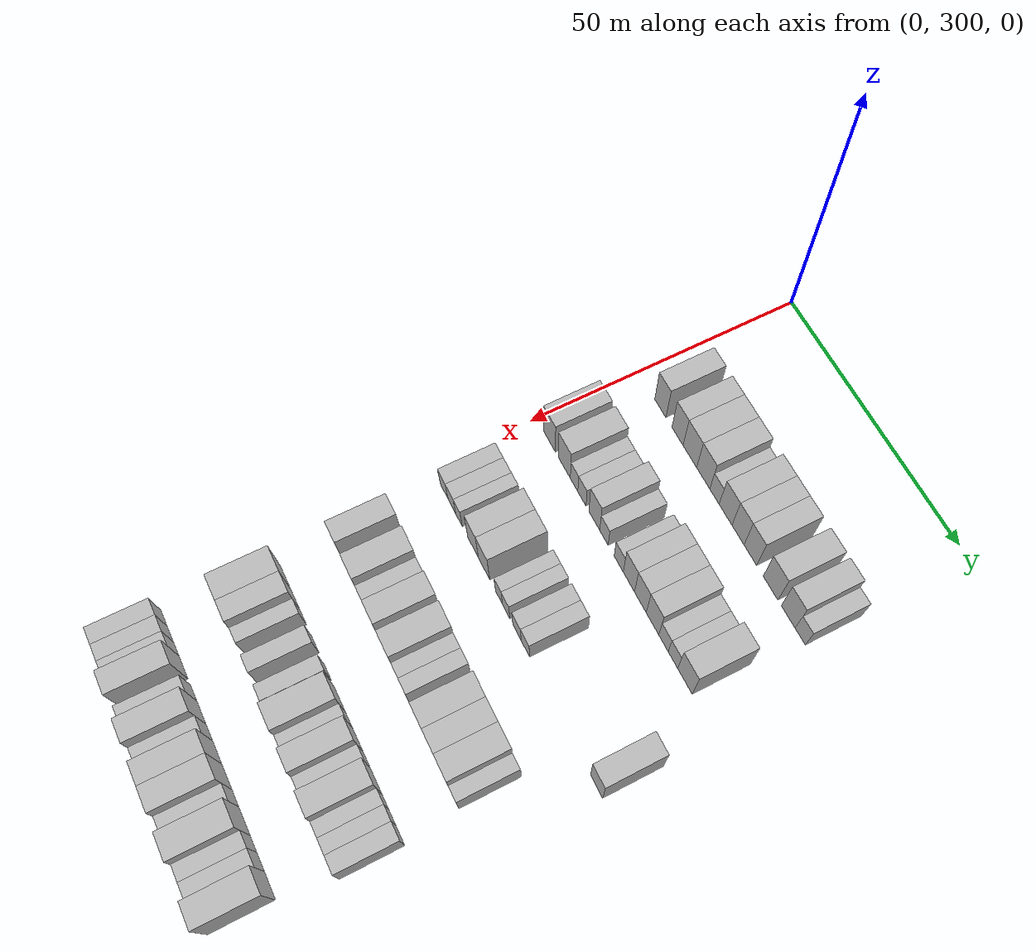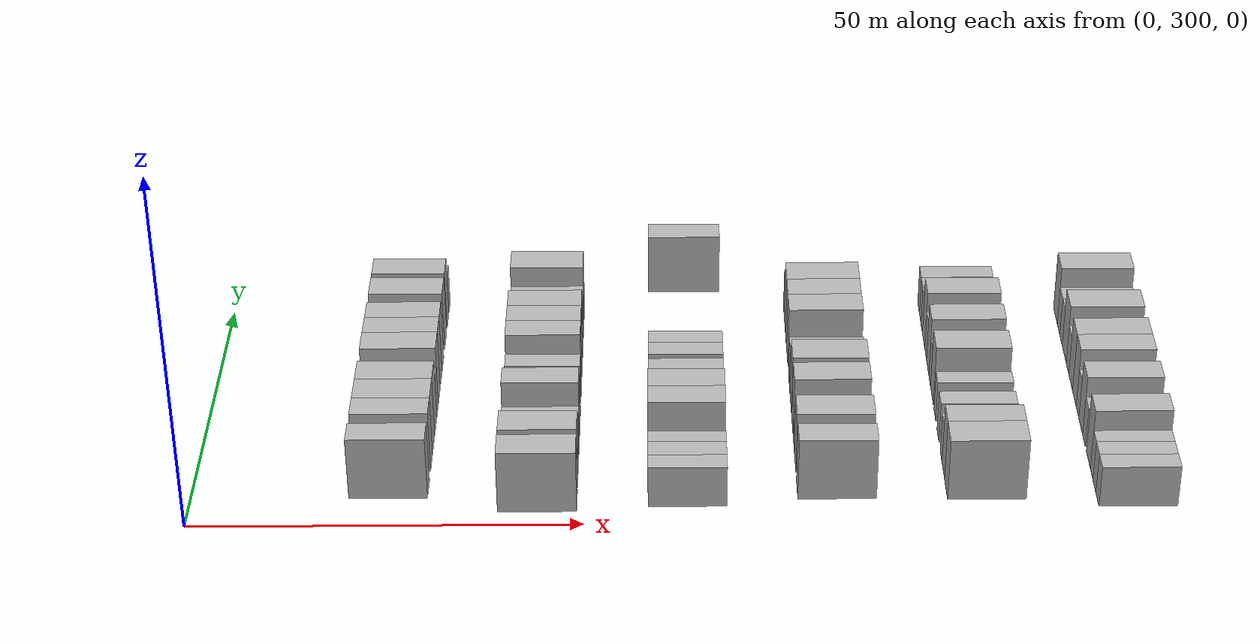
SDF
<sdf version="1.6">
 <world name="default">
  <model name="building_158">
   <static>1</static>
   <pose>25.0000 307.6131 0 0.000000 0.000000 0.000000</pose>
   <link name="link">
    <pose>0 0 4.50 0 0 0</pose>
    <collision name="collision"><geometry><box><size>10.0000 3.7844 9.0000</size></box></geometry></collision>
    <visual name="visual">
     <cast_shadows>0</cast_shadows>
     <geometry><box><size>10.0000 3.7844 9.0000</size></box></geometry>
     <material>
      <script>
       <uri>model://HANNAS_wall/materials/scripts</uri>
       <uri>model://HANNAS_wall/materials/textures</uri>
       <name>vrc/HANNAS_wall</name>
      </script>
     </material>
    </visual>
   </link>
  </model>
  <model name="building_159">
   <static>1</static>
   <pose>25.0000 313.3471 0 0.000000 0.000000 0.000000</pose>
   <link name="link">
    <pose>0 0 4.50 0 0 0</pose>
    <collision name="collision"><geometry><box><size>10.0000 3.6837 9.0000</size></box></geometry></collision>
    <visual name="visual">
     <cast_shadows>0</cast_shadows>
     <geometry><box><size>10.0000 3.6837 9.0000</size></box></geometry>
     <material>
      <script>
       <uri>model://HANNAS_wall/materials/scripts</uri>
       <uri>model://HANNAS_wall/materials/textures</uri>
       <name>vrc/HANNAS_wall</name>
      </script>
     </material>
    </visual>
   </link>
  </model>
  <model name="building_160">
   <static>1</static>
   <pose>25.0000 317.4064 0 0.000000 0.000000 0.000000</pose>
   <link name="link">
    <pose>0 0 4.50 0 0 0</pose>
    <collision name="collision"><geometry><box><size>10.0000 4.4350 9.0000</size></box></geometry></collision>
    <visual name="visual">
     <cast_shadows>0</cast_shadows>
     <geometry><box><size>10.0000 4.4350 9.0000</size></box></geometry>
     <material>
      <script>
       <uri>model://HANNAS_wall/materials/scripts</uri>
       <uri>model://HANNAS_wall/materials/textures</uri>
       <name>vrc/HANNAS_wall</name>
      </script>
     </material>
    </visual>
   </link>
  </model>
  <model name="building_161">
   <static>1</static>
   <pose>25.0000 321.7388 0 0.000000 0.000000 0.000000</pose>
   <link name="link">
    <pose>0 0 4.50 0 0 0</pose>
    <collision name="collision"><geometry><box><size>10.0000 4.2299 9.0000</size></box></geometry></collision>
    <visual name="visual">
     <cast_shadows>0</cast_shadows>
     <geometry><box><size>10.0000 4.2299 9.0000</size></box></geometry>
     <material>
      <script>
       <uri>model://HANNAS_wall/materials/scripts</uri>
       <uri>model://HANNAS_wall/materials/textures</uri>
       <name>vrc/HANNAS_wall</name>
      </script>
     </material>
    </visual>
   </link>
  </model>
  <model name="building_162">
   <static>1</static>
   <pose>25.0000 325.3303 0 0.000000 0.000000 0.000000</pose>
   <link name="link">
    <pose>0 0 3.00 0 0 0</pose>
    <collision name="collision"><geometry><box><size>10.0000 2.9530 6.0000</size></box></geometry></collision>
    <visual name="visual">
     <cast_shadows>0</cast_shadows>
     <geometry><box><size>10.0000 2.9530 6.0000</size></box></geometry>
     <material>
      <script>
       <uri>model://HANNAS_wall/materials/scripts</uri>
       <uri>model://HANNAS_wall/materials/textures</uri>
       <name>vrc/HANNAS_wall</name>
      </script>
     </material>
    </visual>
   </link>
  </model>
  <model name="building_163">
   <static>1</static>
   <pose>25.0000 328.8272 0 0.000000 0.000000 0.000000</pose>
   <link name="link">
    <pose>0 0 4.50 0 0 0</pose>
    <collision name="collision"><geometry><box><size>10.0000 4.0409 9.0000</size></box></geometry></collision>
    <visual name="visual">
     <cast_shadows>0</cast_shadows>
     <geometry><box><size>10.0000 4.0409 9.0000</size></box></geometry>
     <material>
      <script>
       <uri>model://HANNAS_wall/materials/scripts</uri>
       <uri>model://HANNAS_wall/materials/textures</uri>
       <name>vrc/HANNAS_wall</name>
      </script>
     </material>
    </visual>
   </link>
  </model>
  <model name="building_164">
   <static>1</static>
   <pose>25.0000 332.7085 0 0.000000 0.000000 0.000000</pose>
   <link name="link">
    <pose>0 0 4.50 0 0 0</pose>
    <collision name="collision"><geometry><box><size>10.0000 3.7217 9.0000</size></box></geometry></collision>
    <visual name="visual">
     <cast_shadows>0</cast_shadows>
     <geometry><box><size>10.0000 3.7217 9.0000</size></box></geometry>
     <material>
      <script>
       <uri>model://HANNAS_wall/materials/scripts</uri>
       <uri>model://HANNAS_wall/materials/textures</uri>
       <name>vrc/HANNAS_wall</name>
      </script>
     </material>
    </visual>
   </link>
  </model>
  <model name="building_165">
   <static>1</static>
   <pose>25.0000 336.4821 0 0.000000 0.000000 0.000000</pose>
   <link name="link">
    <pose>0 0 4.50 0 0 0</pose>
    <collision name="collision"><geometry><box><size>10.0000 3.8254 9.0000</size></box></geometry></collision>
    <visual name="visual">
     <cast_shadows>0</cast_shadows>
     <geometry><box><size>10.0000 3.8254 9.0000</size></box></geometry>
     <material>
      <script>
       <uri>model://HANNAS_wall/materials/scripts</uri>
       <uri>model://HANNAS_wall/materials/textures</uri>
       <name>vrc/HANNAS_wall</name>
      </script>
     </material>
    </visual>
   </link>
  </model>
  <model name="building_166">
   <static>1</static>
   <pose>25.0000 342.5741 0 0.000000 0.000000 0.000000</pose>
   <link name="link">
    <pose>0 0 4.50 0 0 0</pose>
    <collision name="collision"><geometry><box><size>10.0000 4.3586 9.0000</size></box></geometry></collision>
    <visual name="visual">
     <cast_shadows>0</cast_shadows>
     <geometry><box><size>10.0000 4.3586 9.0000</size></box></geometry>
     <material>
      <script>
       <uri>model://HANNAS_wall/materials/scripts</uri>
       <uri>model://HANNAS_wall/materials/textures</uri>
       <name>vrc/HANNAS_wall</name>
      </script>
     </material>
    </visual>
   </link>
  </model>
  <model name="building_167">
   <static>1</static>
   <pose>25.0000 347.7501 0 0.000000 0.000000 0.000000</pose>
   <link name="link">
    <pose>0 0 4.50 0 0 0</pose>
    <collision name="collision"><geometry><box><size>10.0000 3.9934 9.0000</size></box></geometry></collision>
    <visual name="visual">
     <cast_shadows>0</cast_shadows>
     <geometry><box><size>10.0000 3.9934 9.0000</size></box></geometry>
     <material>
      <script>
       <uri>model://HANNAS_wall/materials/scripts</uri>
       <uri>model://HANNAS_wall/materials/textures</uri>
       <name>vrc/HANNAS_wall</name>
      </script>
     </material>
    </visual>
   </link>
  </model>
  <model name="building_168">
   <static>1</static>
   <pose>25.0000 351.2343 0 0.000000 0.000000 0.000000</pose>
   <link name="link">
    <pose>0 0 3.00 0 0 0</pose>
    <collision name="collision"><geometry><box><size>10.0000 2.9751 6.0000</size></box></geometry></collision>
    <visual name="visual">
     <cast_shadows>0</cast_shadows>
     <geometry><box><size>10.0000 2.9751 6.0000</size></box></geometry>
     <material>
      <script>
       <uri>model://HANNAS_wall/materials/scripts</uri>
       <uri>model://HANNAS_wall/materials/textures</uri>
       <name>vrc/HANNAS_wall</name>
      </script>
     </material>
    </visual>
   </link>
  </model>
  <model name="building_333">
   <static>1</static>
   <pose>44.0000 304.7657 0 0.000000 0.000000 0.000000</pose>
   <link name="link">
    <pose>0 0 4.50 0 0 0</pose>
    <collision name="collision"><geometry><box><size>10.0000 4.1541 9.0000</size></box></geometry></collision>
    <visual name="visual">
     <cast_shadows>0</cast_shadows>
     <geometry><box><size>10.0000 4.1541 9.0000</size></box></geometry>
     <material>
      <script>
       <uri>model://HANNAS_wall/materials/scripts</uri>
       <uri>model://HANNAS_wall/materials/textures</uri>
       <name>vrc/HANNAS_wall</name>
      </script>
     </material>
    </visual>
   </link>
  </model>
  <model name="building_334">
   <static>1</static>
   <pose>44.0000 309.9704 0 0.000000 0.000000 0.000000</pose>
   <link name="link">
    <pose>0 0 4.50 0 0 0</pose>
    <collision name="collision"><geometry><box><size>10.0000 4.2553 9.0000</size></box></geometry></collision>
    <visual name="visual">
     <cast_shadows>0</cast_shadows>
     <geometry><box><size>10.0000 4.2553 9.0000</size></box></geometry>
     <material>
      <script>
       <uri>model://HANNAS_wall/materials/scripts</uri>
       <uri>model://HANNAS_wall/materials/textures</uri>
       <name>vrc/HANNAS_wall</name>
      </script>
     </material>
    </visual>
   </link>
  </model>
  <model name="building_335">
   <static>1</static>
   <pose>44.0000 313.3939 0 0.000000 0.000000 0.000000</pose>
   <link name="link">
    <pose>0 0 3.00 0 0 0</pose>
    <collision name="collision"><geometry><box><size>10.0000 2.5917 6.0000</size></box></geometry></collision>
    <visual name="visual">
     <cast_shadows>0</cast_shadows>
     <geometry><box><size>10.0000 2.5917 6.0000</size></box></geometry>
     <material>
      <script>
       <uri>model://HANNAS_wall/materials/scripts</uri>
       <uri>model://HANNAS_wall/materials/textures</uri>
       <name>vrc/HANNAS_wall</name>
      </script>
     </material>
    </visual>
   </link>
  </model>
  <model name="building_336">
   <static>1</static>
   <pose>44.0000 316.0866 0 0.000000 0.000000 0.000000</pose>
   <link name="link">
    <pose>0 0 3.00 0 0 0</pose>
    <collision name="collision"><geometry><box><size>10.0000 2.7937 6.0000</size></box></geometry></collision>
    <visual name="visual">
     <cast_shadows>0</cast_shadows>
     <geometry><box><size>10.0000 2.7937 6.0000</size></box></geometry>
     <material>
      <script>
       <uri>model://HANNAS_wall/materials/scripts</uri>
       <uri>model://HANNAS_wall/materials/textures</uri>
       <name>vrc/HANNAS_wall</name>
      </script>
     </material>
    </visual>
   </link>
  </model>
  <model name="building_337">
   <static>1</static>
   <pose>44.0000 320.3128 0 0.000000 0.000000 0.000000</pose>
   <link name="link">
    <pose>0 0 4.50 0 0 0</pose>
    <collision name="collision"><geometry><box><size>10.0000 3.6588 9.0000</size></box></geometry></collision>
    <visual name="visual">
     <cast_shadows>0</cast_shadows>
     <geometry><box><size>10.0000 3.6588 9.0000</size></box></geometry>
     <material>
      <script>
       <uri>model://HANNAS_wall/materials/scripts</uri>
       <uri>model://HANNAS_wall/materials/textures</uri>
       <name>vrc/HANNAS_wall</name>
      </script>
     </material>
    </visual>
   </link>
  </model>
  <model name="building_338">
   <static>1</static>
   <pose>44.0000 323.5495 0 0.000000 0.000000 0.000000</pose>
   <link name="link">
    <pose>0 0 3.00 0 0 0</pose>
    <collision name="collision"><geometry><box><size>10.0000 2.8146 6.0000</size></box></geometry></collision>
    <visual name="visual">
     <cast_shadows>0</cast_shadows>
     <geometry><box><size>10.0000 2.8146 6.0000</size></box></geometry>
     <material>
      <script>
       <uri>model://HANNAS_wall/materials/scripts</uri>
       <uri>model://HANNAS_wall/materials/textures</uri>
       <name>vrc/HANNAS_wall</name>
      </script>
     </material>
    </visual>
   </link>
  </model>
  <model name="building_339">
   <static>1</static>
   <pose>44.0000 328.4510 0 0.000000 0.000000 0.000000</pose>
   <link name="link">
    <pose>0 0 3.00 0 0 0</pose>
    <collision name="collision"><geometry><box><size>10.0000 2.9882 6.0000</size></box></geometry></collision>
    <visual name="visual">
     <cast_shadows>0</cast_shadows>
     <geometry><box><size>10.0000 2.9882 6.0000</size></box></geometry>
     <material>
      <script>
       <uri>model://HANNAS_wall/materials/scripts</uri>
       <uri>model://HANNAS_wall/materials/textures</uri>
       <name>vrc/HANNAS_wall</name>
      </script>
     </material>
    </visual>
   </link>
  </model>
  <model name="building_340">
   <static>1</static>
   <pose>44.0000 331.7695 0 0.000000 0.000000 0.000000</pose>
   <link name="link">
    <pose>0 0 4.50 0 0 0</pose>
    <collision name="collision"><geometry><box><size>10.0000 3.6489 9.0000</size></box></geometry></collision>
    <visual name="visual">
     <cast_shadows>0</cast_shadows>
     <geometry><box><size>10.0000 3.6489 9.0000</size></box></geometry>
     <material>
      <script>
       <uri>model://HANNAS_wall/materials/scripts</uri>
       <uri>model://HANNAS_wall/materials/textures</uri>
       <name>vrc/HANNAS_wall</name>
      </script>
     </material>
    </visual>
   </link>
  </model>
  <model name="building_341">
   <static>1</static>
   <pose>44.0000 335.4637 0 0.000000 0.000000 0.000000</pose>
   <link name="link">
    <pose>0 0 4.50 0 0 0</pose>
    <collision name="collision"><geometry><box><size>10.0000 3.7394 9.0000</size></box></geometry></collision>
    <visual name="visual">
     <cast_shadows>0</cast_shadows>
     <geometry><box><size>10.0000 3.7394 9.0000</size></box></geometry>
     <material>
      <script>
       <uri>model://HANNAS_wall/materials/scripts</uri>
       <uri>model://HANNAS_wall/materials/textures</uri>
       <name>vrc/HANNAS_wall</name>
      </script>
     </material>
    </visual>
   </link>
  </model>
  <model name="building_342">
   <static>1</static>
   <pose>44.0000 339.3068 0 0.000000 0.000000 0.000000</pose>
   <link name="link">
    <pose>0 0 4.50 0 0 0</pose>
    <collision name="collision"><geometry><box><size>10.0000 3.9469 9.0000</size></box></geometry></collision>
    <visual name="visual">
     <cast_shadows>0</cast_shadows>
     <geometry><box><size>10.0000 3.9469 9.0000</size></box></geometry>
     <material>
      <script>
       <uri>model://HANNAS_wall/materials/scripts</uri>
       <uri>model://HANNAS_wall/materials/textures</uri>
       <name>vrc/HANNAS_wall</name>
      </script>
     </material>
    </visual>
   </link>
  </model>
  <model name="building_343">
   <static>1</static>
   <pose>44.0000 342.7514 0 0.000000 0.000000 0.000000</pose>
   <link name="link">
    <pose>0 0 3.00 0 0 0</pose>
    <collision name="collision"><geometry><box><size>10.0000 2.9422 6.0000</size></box></geometry></collision>
    <visual name="visual">
     <cast_shadows>0</cast_shadows>
     <geometry><box><size>10.0000 2.9422 6.0000</size></box></geometry>
     <material>
      <script>
       <uri>model://HANNAS_wall/materials/scripts</uri>
       <uri>model://HANNAS_wall/materials/textures</uri>
       <name>vrc/HANNAS_wall</name>
      </script>
     </material>
    </visual>
   </link>
  </model>
  <model name="building_344">
   <static>1</static>
   <pose>44.0000 345.6802 0 0.000000 0.000000 0.000000</pose>
   <link name="link">
    <pose>0 0 3.00 0 0 0</pose>
    <collision name="collision"><geometry><box><size>10.0000 2.9154 6.0000</size></box></geometry></collision>
    <visual name="visual">
     <cast_shadows>0</cast_shadows>
     <geometry><box><size>10.0000 2.9154 6.0000</size></box></geometry>
     <material>
      <script>
       <uri>model://HANNAS_wall/materials/scripts</uri>
       <uri>model://HANNAS_wall/materials/textures</uri>
       <name>vrc/HANNAS_wall</name>
      </script>
     </material>
    </visual>
   </link>
  </model>
  <model name="building_345">
   <static>1</static>
   <pose>44.0000 349.3369 0 0.000000 0.000000 0.000000</pose>
   <link name="link">
    <pose>0 0 4.50 0 0 0</pose>
    <collision name="collision"><geometry><box><size>10.0000 4.3979 9.0000</size></box></geometry></collision>
    <visual name="visual">
     <cast_shadows>0</cast_shadows>
     <geometry><box><size>10.0000 4.3979 9.0000</size></box></geometry>
     <material>
      <script>
       <uri>model://HANNAS_wall/materials/scripts</uri>
       <uri>model://HANNAS_wall/materials/textures</uri>
       <name>vrc/HANNAS_wall</name>
      </script>
     </material>
    </visual>
   </link>
  </model>
  <model name="building_510">
   <static>1</static>
   <pose>63.0000 305.0726 0 0.000000 0.000000 0.000000</pose>
   <link name="link">
    <pose>0 0 3.00 0 0 0</pose>
    <collision name="collision"><geometry><box><size>10.0000 2.8462 6.0000</size></box></geometry></collision>
    <visual name="visual">
     <cast_shadows>0</cast_shadows>
     <geometry><box><size>10.0000 2.8462 6.0000</size></box></geometry>
     <material>
      <script>
       <uri>model://HANNAS_wall/materials/scripts</uri>
       <uri>model://HANNAS_wall/materials/textures</uri>
       <name>vrc/HANNAS_wall</name>
      </script>
     </material>
    </visual>
   </link>
  </model>
  <model name="building_511">
   <static>1</static>
   <pose>63.0000 307.9442 0 0.000000 0.000000 0.000000</pose>
   <link name="link">
    <pose>0 0 3.00 0 0 0</pose>
    <collision name="collision"><geometry><box><size>10.0000 2.8970 6.0000</size></box></geometry></collision>
    <visual name="visual">
     <cast_shadows>0</cast_shadows>
     <geometry><box><size>10.0000 2.8970 6.0000</size></box></geometry>
     <material>
      <script>
       <uri>model://HANNAS_wall/materials/scripts</uri>
       <uri>model://HANNAS_wall/materials/textures</uri>
       <name>vrc/HANNAS_wall</name>
      </script>
     </material>
    </visual>
   </link>
  </model>
  <model name="building_512">
   <static>1</static>
   <pose>63.0000 310.5952 0 0.000000 0.000000 0.000000</pose>
   <link name="link">
    <pose>0 0 3.00 0 0 0</pose>
    <collision name="collision"><geometry><box><size>10.0000 2.4050 6.0000</size></box></geometry></collision>
    <visual name="visual">
     <cast_shadows>0</cast_shadows>
     <geometry><box><size>10.0000 2.4050 6.0000</size></box></geometry>
     <material>
      <script>
       <uri>model://HANNAS_wall/materials/scripts</uri>
       <uri>model://HANNAS_wall/materials/textures</uri>
       <name>vrc/HANNAS_wall</name>
      </script>
     </material>
    </visual>
   </link>
  </model>
  <model name="building_513">
   <static>1</static>
   <pose>63.0000 315.7495 0 0.000000 0.000000 0.000000</pose>
   <link name="link">
    <pose>0 0 4.50 0 0 0</pose>
    <collision name="collision"><geometry><box><size>10.0000 3.9037 9.0000</size></box></geometry></collision>
    <visual name="visual">
     <cast_shadows>0</cast_shadows>
     <geometry><box><size>10.0000 3.9037 9.0000</size></box></geometry>
     <material>
      <script>
       <uri>model://HANNAS_wall/materials/scripts</uri>
       <uri>model://HANNAS_wall/materials/textures</uri>
       <name>vrc/HANNAS_wall</name>
      </script>
     </material>
    </visual>
   </link>
  </model>
  <model name="building_514">
   <static>1</static>
   <pose>63.0000 319.7122 0 0.000000 0.000000 0.000000</pose>
   <link name="link">
    <pose>0 0 4.50 0 0 0</pose>
    <collision name="collision"><geometry><box><size>10.0000 4.0216 9.0000</size></box></geometry></collision>
    <visual name="visual">
     <cast_shadows>0</cast_shadows>
     <geometry><box><size>10.0000 4.0216 9.0000</size></box></geometry>
     <material>
      <script>
       <uri>model://HANNAS_wall/materials/scripts</uri>
       <uri>model://HANNAS_wall/materials/textures</uri>
       <name>vrc/HANNAS_wall</name>
      </script>
     </material>
    </visual>
   </link>
  </model>
  <model name="building_515">
   <static>1</static>
   <pose>63.0000 324.9414 0 0.000000 0.000000 0.000000</pose>
   <link name="link">
    <pose>0 0 3.00 0 0 0</pose>
    <collision name="collision"><geometry><box><size>10.0000 2.4370 6.0000</size></box></geometry></collision>
    <visual name="visual">
     <cast_shadows>0</cast_shadows>
     <geometry><box><size>10.0000 2.4370 6.0000</size></box></geometry>
     <material>
      <script>
       <uri>model://HANNAS_wall/materials/scripts</uri>
       <uri>model://HANNAS_wall/materials/textures</uri>
       <name>vrc/HANNAS_wall</name>
      </script>
     </material>
    </visual>
   </link>
  </model>
  <model name="building_516">
   <static>1</static>
   <pose>63.0000 327.4556 0 0.000000 0.000000 0.000000</pose>
   <link name="link">
    <pose>0 0 3.00 0 0 0</pose>
    <collision name="collision"><geometry><box><size>10.0000 2.5913 6.0000</size></box></geometry></collision>
    <visual name="visual">
     <cast_shadows>0</cast_shadows>
     <geometry><box><size>10.0000 2.5913 6.0000</size></box></geometry>
     <material>
      <script>
       <uri>model://HANNAS_wall/materials/scripts</uri>
       <uri>model://HANNAS_wall/materials/textures</uri>
       <name>vrc/HANNAS_wall</name>
      </script>
     </material>
    </visual>
   </link>
  </model>
  <model name="building_517">
   <static>1</static>
   <pose>63.0000 331.1958 0 0.000000 0.000000 0.000000</pose>
   <link name="link">
    <pose>0 0 3.00 0 0 0</pose>
    <collision name="collision"><geometry><box><size>10.0000 2.8891 6.0000</size></box></geometry></collision>
    <visual name="visual">
     <cast_shadows>0</cast_shadows>
     <geometry><box><size>10.0000 2.8891 6.0000</size></box></geometry>
     <material>
      <script>
       <uri>model://HANNAS_wall/materials/scripts</uri>
       <uri>model://HANNAS_wall/materials/textures</uri>
       <name>vrc/HANNAS_wall</name>
      </script>
     </material>
    </visual>
   </link>
  </model>
  <model name="building_518">
   <static>1</static>
   <pose>63.0000 334.0576 0 0.000000 0.000000 0.000000</pose>
   <link name="link">
    <pose>0 0 3.00 0 0 0</pose>
    <collision name="collision"><geometry><box><size>10.0000 2.8346 6.0000</size></box></geometry></collision>
    <visual name="visual">
     <cast_shadows>0</cast_shadows>
     <geometry><box><size>10.0000 2.8346 6.0000</size></box></geometry>
     <material>
      <script>
       <uri>model://HANNAS_wall/materials/scripts</uri>
       <uri>model://HANNAS_wall/materials/textures</uri>
       <name>vrc/HANNAS_wall</name>
      </script>
     </material>
    </visual>
   </link>
  </model>
  <model name="building_519">
   <static>1</static>
   <pose>63.0000 357.0391 0 0.000000 0.000000 0.000000</pose>
   <link name="link">
    <pose>0 0 4.50 0 0 0</pose>
    <collision name="collision"><geometry><box><size>10.0000 3.7095 9.0000</size></box></geometry></collision>
    <visual name="visual">
     <cast_shadows>0</cast_shadows>
     <geometry><box><size>10.0000 3.7095 9.0000</size></box></geometry>
     <material>
      <script>
       <uri>model://HANNAS_wall/materials/scripts</uri>
       <uri>model://HANNAS_wall/materials/textures</uri>
       <name>vrc/HANNAS_wall</name>
      </script>
     </material>
    </visual>
   </link>
  </model>
  <model name="building_664">
   <static>1</static>
   <pose>82.0000 307.0286 0 0.000000 0.000000 0.000000</pose>
   <link name="link">
    <pose>0 0 4.50 0 0 0</pose>
    <collision name="collision"><geometry><box><size>10.0000 3.8230 9.0000</size></box></geometry></collision>
    <visual name="visual">
     <cast_shadows>0</cast_shadows>
     <geometry><box><size>10.0000 3.8230 9.0000</size></box></geometry>
     <material>
      <script>
       <uri>model://HANNAS_wall/materials/scripts</uri>
       <uri>model://HANNAS_wall/materials/textures</uri>
       <name>vrc/HANNAS_wall</name>
      </script>
     </material>
    </visual>
   </link>
  </model>
  <model name="building_665">
   <static>1</static>
   <pose>82.0000 313.1469 0 0.000000 0.000000 0.000000</pose>
   <link name="link">
    <pose>0 0 4.50 0 0 0</pose>
    <collision name="collision"><geometry><box><size>10.0000 4.4135 9.0000</size></box></geometry></collision>
    <visual name="visual">
     <cast_shadows>0</cast_shadows>
     <geometry><box><size>10.0000 4.4135 9.0000</size></box></geometry>
     <material>
      <script>
       <uri>model://HANNAS_wall/materials/scripts</uri>
       <uri>model://HANNAS_wall/materials/textures</uri>
       <name>vrc/HANNAS_wall</name>
      </script>
     </material>
    </visual>
   </link>
  </model>
  <model name="building_666">
   <static>1</static>
   <pose>82.0000 316.6604 0 0.000000 0.000000 0.000000</pose>
   <link name="link">
    <pose>0 0 3.00 0 0 0</pose>
    <collision name="collision"><geometry><box><size>10.0000 2.6135 6.0000</size></box></geometry></collision>
    <visual name="visual">
     <cast_shadows>0</cast_shadows>
     <geometry><box><size>10.0000 2.6135 6.0000</size></box></geometry>
     <material>
      <script>
       <uri>model://HANNAS_wall/materials/scripts</uri>
       <uri>model://HANNAS_wall/materials/textures</uri>
       <name>vrc/HANNAS_wall</name>
      </script>
     </material>
    </visual>
   </link>
  </model>
  <model name="building_667">
   <static>1</static>
   <pose>82.0000 321.0228 0 0.000000 0.000000 0.000000</pose>
   <link name="link">
    <pose>0 0 4.50 0 0 0</pose>
    <collision name="collision"><geometry><box><size>10.0000 4.1113 9.0000</size></box></geometry></collision>
    <visual name="visual">
     <cast_shadows>0</cast_shadows>
     <geometry><box><size>10.0000 4.1113 9.0000</size></box></geometry>
     <material>
      <script>
       <uri>model://HANNAS_wall/materials/scripts</uri>
       <uri>model://HANNAS_wall/materials/textures</uri>
       <name>vrc/HANNAS_wall</name>
      </script>
     </material>
    </visual>
   </link>
  </model>
  <model name="building_668">
   <static>1</static>
   <pose>82.0000 326.3225 0 0.000000 0.000000 0.000000</pose>
   <link name="link">
    <pose>0 0 4.50 0 0 0</pose>
    <collision name="collision"><geometry><box><size>10.0000 4.4880 9.0000</size></box></geometry></collision>
    <visual name="visual">
     <cast_shadows>0</cast_shadows>
     <geometry><box><size>10.0000 4.4880 9.0000</size></box></geometry>
     <material>
      <script>
       <uri>model://HANNAS_wall/materials/scripts</uri>
       <uri>model://HANNAS_wall/materials/textures</uri>
       <name>vrc/HANNAS_wall</name>
      </script>
     </material>
    </visual>
   </link>
  </model>
  <model name="building_669">
   <static>1</static>
   <pose>82.0000 329.8509 0 0.000000 0.000000 0.000000</pose>
   <link name="link">
    <pose>0 0 3.00 0 0 0</pose>
    <collision name="collision"><geometry><box><size>10.0000 2.5688 6.0000</size></box></geometry></collision>
    <visual name="visual">
     <cast_shadows>0</cast_shadows>
     <geometry><box><size>10.0000 2.5688 6.0000</size></box></geometry>
     <material>
      <script>
       <uri>model://HANNAS_wall/materials/scripts</uri>
       <uri>model://HANNAS_wall/materials/textures</uri>
       <name>vrc/HANNAS_wall</name>
      </script>
     </material>
    </visual>
   </link>
  </model>
  <model name="building_670">
   <static>1</static>
   <pose>82.0000 332.4787 0 0.000000 0.000000 0.000000</pose>
   <link name="link">
    <pose>0 0 3.00 0 0 0</pose>
    <collision name="collision"><geometry><box><size>10.0000 2.6868 6.0000</size></box></geometry></collision>
    <visual name="visual">
     <cast_shadows>0</cast_shadows>
     <geometry><box><size>10.0000 2.6868 6.0000</size></box></geometry>
     <material>
      <script>
       <uri>model://HANNAS_wall/materials/scripts</uri>
       <uri>model://HANNAS_wall/materials/textures</uri>
       <name>vrc/HANNAS_wall</name>
      </script>
     </material>
    </visual>
   </link>
  </model>
  <model name="building_671">
   <static>1</static>
   <pose>82.0000 337.9119 0 0.000000 0.000000 0.000000</pose>
   <link name="link">
    <pose>0 0 4.50 0 0 0</pose>
    <collision name="collision"><geometry><box><size>10.0000 4.1797 9.0000</size></box></geometry></collision>
    <visual name="visual">
     <cast_shadows>0</cast_shadows>
     <geometry><box><size>10.0000 4.1797 9.0000</size></box></geometry>
     <material>
      <script>
       <uri>model://HANNAS_wall/materials/scripts</uri>
       <uri>model://HANNAS_wall/materials/textures</uri>
       <name>vrc/HANNAS_wall</name>
      </script>
     </material>
    </visual>
   </link>
  </model>
  <model name="building_672">
   <static>1</static>
   <pose>82.0000 341.9696 0 0.000000 0.000000 0.000000</pose>
   <link name="link">
    <pose>0 0 4.50 0 0 0</pose>
    <collision name="collision"><geometry><box><size>10.0000 3.9357 9.0000</size></box></geometry></collision>
    <visual name="visual">
     <cast_shadows>0</cast_shadows>
     <geometry><box><size>10.0000 3.9357 9.0000</size></box></geometry>
     <material>
      <script>
       <uri>model://HANNAS_wall/materials/scripts</uri>
       <uri>model://HANNAS_wall/materials/textures</uri>
       <name>vrc/HANNAS_wall</name>
      </script>
     </material>
    </visual>
   </link>
  </model>
  <model name="building_673">
   <static>1</static>
   <pose>82.0000 346.1012 0 0.000000 0.000000 0.000000</pose>
   <link name="link">
    <pose>0 0 4.50 0 0 0</pose>
    <collision name="collision"><geometry><box><size>10.0000 4.3275 9.0000</size></box></geometry></collision>
    <visual name="visual">
     <cast_shadows>0</cast_shadows>
     <geometry><box><size>10.0000 4.3275 9.0000</size></box></geometry>
     <material>
      <script>
       <uri>model://HANNAS_wall/materials/scripts</uri>
       <uri>model://HANNAS_wall/materials/textures</uri>
       <name>vrc/HANNAS_wall</name>
      </script>
     </material>
    </visual>
   </link>
  </model>
  <model name="building_674">
   <static>1</static>
   <pose>82.0000 349.5628 0 0.000000 0.000000 0.000000</pose>
   <link name="link">
    <pose>0 0 3.00 0 0 0</pose>
    <collision name="collision"><geometry><box><size>10.0000 2.5957 6.0000</size></box></geometry></collision>
    <visual name="visual">
     <cast_shadows>0</cast_shadows>
     <geometry><box><size>10.0000 2.5957 6.0000</size></box></geometry>
     <material>
      <script>
       <uri>model://HANNAS_wall/materials/scripts</uri>
       <uri>model://HANNAS_wall/materials/textures</uri>
       <name>vrc/HANNAS_wall</name>
      </script>
     </material>
    </visual>
   </link>
  </model>
  <model name="building_828">
   <static>1</static>
   <pose>101.0000 307.0944 0 0.000000 0.000000 0.000000</pose>
   <link name="link">
    <pose>0 0 4.50 0 0 0</pose>
    <collision name="collision"><geometry><box><size>10.0000 4.4525 9.0000</size></box></geometry></collision>
    <visual name="visual">
     <cast_shadows>0</cast_shadows>
     <geometry><box><size>10.0000 4.4525 9.0000</size></box></geometry>
     <material>
      <script>
       <uri>model://HANNAS_wall/materials/scripts</uri>
       <uri>model://HANNAS_wall/materials/textures</uri>
       <name>vrc/HANNAS_wall</name>
      </script>
     </material>
    </visual>
   </link>
  </model>
  <model name="building_829">
   <static>1</static>
   <pose>101.0000 311.1552 0 0.000000 0.000000 0.000000</pose>
   <link name="link">
    <pose>0 0 4.50 0 0 0</pose>
    <collision name="collision"><geometry><box><size>10.0000 3.6692 9.0000</size></box></geometry></collision>
    <visual name="visual">
     <cast_shadows>0</cast_shadows>
     <geometry><box><size>10.0000 3.6692 9.0000</size></box></geometry>
     <material>
      <script>
       <uri>model://HANNAS_wall/materials/scripts</uri>
       <uri>model://HANNAS_wall/materials/textures</uri>
       <name>vrc/HANNAS_wall</name>
      </script>
     </material>
    </visual>
   </link>
  </model>
  <model name="building_830">
   <static>1</static>
   <pose>101.0000 314.2816 0 0.000000 0.000000 0.000000</pose>
   <link name="link">
    <pose>0 0 3.00 0 0 0</pose>
    <collision name="collision"><geometry><box><size>10.0000 2.5836 6.0000</size></box></geometry></collision>
    <visual name="visual">
     <cast_shadows>0</cast_shadows>
     <geometry><box><size>10.0000 2.5836 6.0000</size></box></geometry>
     <material>
      <script>
       <uri>model://HANNAS_wall/materials/scripts</uri>
       <uri>model://HANNAS_wall/materials/textures</uri>
       <name>vrc/HANNAS_wall</name>
      </script>
     </material>
    </visual>
   </link>
  </model>
  <model name="building_831">
   <static>1</static>
   <pose>101.0000 319.0523 0 0.000000 0.000000 0.000000</pose>
   <link name="link">
    <pose>0 0 3.00 0 0 0</pose>
    <collision name="collision"><geometry><box><size>10.0000 2.9579 6.0000</size></box></geometry></collision>
    <visual name="visual">
     <cast_shadows>0</cast_shadows>
     <geometry><box><size>10.0000 2.9579 6.0000</size></box></geometry>
     <material>
      <script>
       <uri>model://HANNAS_wall/materials/scripts</uri>
       <uri>model://HANNAS_wall/materials/textures</uri>
       <name>vrc/HANNAS_wall</name>
      </script>
     </material>
    </visual>
   </link>
  </model>
  <model name="building_832">
   <static>1</static>
   <pose>101.0000 323.8743 0 0.000000 0.000000 0.000000</pose>
   <link name="link">
    <pose>0 0 3.00 0 0 0</pose>
    <collision name="collision"><geometry><box><size>10.0000 2.6860 6.0000</size></box></geometry></collision>
    <visual name="visual">
     <cast_shadows>0</cast_shadows>
     <geometry><box><size>10.0000 2.6860 6.0000</size></box></geometry>
     <material>
      <script>
       <uri>model://HANNAS_wall/materials/scripts</uri>
       <uri>model://HANNAS_wall/materials/textures</uri>
       <name>vrc/HANNAS_wall</name>
      </script>
     </material>
    </visual>
   </link>
  </model>
  <model name="building_833">
   <static>1</static>
   <pose>101.0000 328.4481 0 0.000000 0.000000 0.000000</pose>
   <link name="link">
    <pose>0 0 4.50 0 0 0</pose>
    <collision name="collision"><geometry><box><size>10.0000 4.4616 9.0000</size></box></geometry></collision>
    <visual name="visual">
     <cast_shadows>0</cast_shadows>
     <geometry><box><size>10.0000 4.4616 9.0000</size></box></geometry>
     <material>
      <script>
       <uri>model://HANNAS_wall/materials/scripts</uri>
       <uri>model://HANNAS_wall/materials/textures</uri>
       <name>vrc/HANNAS_wall</name>
      </script>
     </material>
    </visual>
   </link>
  </model>
  <model name="building_834">
   <static>1</static>
   <pose>101.0000 332.0025 0 0.000000 0.000000 0.000000</pose>
   <link name="link">
    <pose>0 0 3.00 0 0 0</pose>
    <collision name="collision"><geometry><box><size>10.0000 2.6472 6.0000</size></box></geometry></collision>
    <visual name="visual">
     <cast_shadows>0</cast_shadows>
     <geometry><box><size>10.0000 2.6472 6.0000</size></box></geometry>
     <material>
      <script>
       <uri>model://HANNAS_wall/materials/scripts</uri>
       <uri>model://HANNAS_wall/materials/textures</uri>
       <name>vrc/HANNAS_wall</name>
      </script>
     </material>
    </visual>
   </link>
  </model>
  <model name="building_835">
   <static>1</static>
   <pose>101.0000 335.2555 0 0.000000 0.000000 0.000000</pose>
   <link name="link">
    <pose>0 0 4.50 0 0 0</pose>
    <collision name="collision"><geometry><box><size>10.0000 3.8588 9.0000</size></box></geometry></collision>
    <visual name="visual">
     <cast_shadows>0</cast_shadows>
     <geometry><box><size>10.0000 3.8588 9.0000</size></box></geometry>
     <material>
      <script>
       <uri>model://HANNAS_wall/materials/scripts</uri>
       <uri>model://HANNAS_wall/materials/textures</uri>
       <name>vrc/HANNAS_wall</name>
      </script>
     </material>
    </visual>
   </link>
  </model>
  <model name="building_836">
   <static>1</static>
   <pose>101.0000 338.5369 0 0.000000 0.000000 0.000000</pose>
   <link name="link">
    <pose>0 0 3.00 0 0 0</pose>
    <collision name="collision"><geometry><box><size>10.0000 2.7040 6.0000</size></box></geometry></collision>
    <visual name="visual">
     <cast_shadows>0</cast_shadows>
     <geometry><box><size>10.0000 2.7040 6.0000</size></box></geometry>
     <material>
      <script>
       <uri>model://HANNAS_wall/materials/scripts</uri>
       <uri>model://HANNAS_wall/materials/textures</uri>
       <name>vrc/HANNAS_wall</name>
      </script>
     </material>
    </visual>
   </link>
  </model>
  <model name="building_837">
   <static>1</static>
   <pose>101.0000 341.9557 0 0.000000 0.000000 0.000000</pose>
   <link name="link">
    <pose>0 0 4.50 0 0 0</pose>
    <collision name="collision"><geometry><box><size>10.0000 4.1335 9.0000</size></box></geometry></collision>
    <visual name="visual">
     <cast_shadows>0</cast_shadows>
     <geometry><box><size>10.0000 4.1335 9.0000</size></box></geometry>
     <material>
      <script>
       <uri>model://HANNAS_wall/materials/scripts</uri>
       <uri>model://HANNAS_wall/materials/textures</uri>
       <name>vrc/HANNAS_wall</name>
      </script>
     </material>
    </visual>
   </link>
  </model>
  <model name="building_838">
   <static>1</static>
   <pose>101.0000 345.2574 0 0.000000 0.000000 0.000000</pose>
   <link name="link">
    <pose>0 0 3.00 0 0 0</pose>
    <collision name="collision"><geometry><box><size>10.0000 2.4700 6.0000</size></box></geometry></collision>
    <visual name="visual">
     <cast_shadows>0</cast_shadows>
     <geometry><box><size>10.0000 2.4700 6.0000</size></box></geometry>
     <material>
      <script>
       <uri>model://HANNAS_wall/materials/scripts</uri>
       <uri>model://HANNAS_wall/materials/textures</uri>
       <name>vrc/HANNAS_wall</name>
      </script>
     </material>
    </visual>
   </link>
  </model>
  <model name="building_839">
   <static>1</static>
   <pose>101.0000 347.7758 0 0.000000 0.000000 0.000000</pose>
   <link name="link">
    <pose>0 0 3.00 0 0 0</pose>
    <collision name="collision"><geometry><box><size>10.0000 2.5668 6.0000</size></box></geometry></collision>
    <visual name="visual">
     <cast_shadows>0</cast_shadows>
     <geometry><box><size>10.0000 2.5668 6.0000</size></box></geometry>
     <material>
      <script>
       <uri>model://HANNAS_wall/materials/scripts</uri>
       <uri>model://HANNAS_wall/materials/textures</uri>
       <name>vrc/HANNAS_wall</name>
      </script>
     </material>
    </visual>
   </link>
  </model>
  <model name="building_840">
   <static>1</static>
   <pose>101.0000 350.5270 0 0.000000 0.000000 0.000000</pose>
   <link name="link">
    <pose>0 0 3.00 0 0 0</pose>
    <collision name="collision"><geometry><box><size>10.0000 2.9355 6.0000</size></box></geometry></collision>
    <visual name="visual">
     <cast_shadows>0</cast_shadows>
     <geometry><box><size>10.0000 2.9355 6.0000</size></box></geometry>
     <material>
      <script>
       <uri>model://HANNAS_wall/materials/scripts</uri>
       <uri>model://HANNAS_wall/materials/textures</uri>
       <name>vrc/HANNAS_wall</name>
      </script>
     </material>
    </visual>
   </link>
  </model>
  <model name="building_999">
   <static>1</static>
   <pose>120.0000 304.6884 0 0.000000 0.000000 0.000000</pose>
   <link name="link">
    <pose>0 0 3.00 0 0 0</pose>
    <collision name="collision"><geometry><box><size>10.0000 2.8943 6.0000</size></box></geometry></collision>
    <visual name="visual">
     <cast_shadows>0</cast_shadows>
     <geometry><box><size>10.0000 2.8943 6.0000</size></box></geometry>
     <material>
      <script>
       <uri>model://HANNAS_wall/materials/scripts</uri>
       <uri>model://HANNAS_wall/materials/textures</uri>
       <name>vrc/HANNAS_wall</name>
      </script>
     </material>
    </visual>
   </link>
  </model>
  <model name="building_1000">
   <static>1</static>
   <pose>120.0000 307.5324 0 0.000000 0.000000 0.000000</pose>
   <link name="link">
    <pose>0 0 3.00 0 0 0</pose>
    <collision name="collision"><geometry><box><size>10.0000 2.7935 6.0000</size></box></geometry></collision>
    <visual name="visual">
     <cast_shadows>0</cast_shadows>
     <geometry><box><size>10.0000 2.7935 6.0000</size></box></geometry>
     <material>
      <script>
       <uri>model://HANNAS_wall/materials/scripts</uri>
       <uri>model://HANNAS_wall/materials/textures</uri>
       <name>vrc/HANNAS_wall</name>
      </script>
     </material>
    </visual>
   </link>
  </model>
  <model name="building_1001">
   <static>1</static>
   <pose>120.0000 310.1561 0 0.000000 0.000000 0.000000</pose>
   <link name="link">
    <pose>0 0 3.00 0 0 0</pose>
    <collision name="collision"><geometry><box><size>10.0000 2.4540 6.0000</size></box></geometry></collision>
    <visual name="visual">
     <cast_shadows>0</cast_shadows>
     <geometry><box><size>10.0000 2.4540 6.0000</size></box></geometry>
     <material>
      <script>
       <uri>model://HANNAS_wall/materials/scripts</uri>
       <uri>model://HANNAS_wall/materials/textures</uri>
       <name>vrc/HANNAS_wall</name>
      </script>
     </material>
    </visual>
   </link>
  </model>
  <model name="building_1002">
   <static>1</static>
   <pose>120.0000 313.3545 0 0.000000 0.000000 0.000000</pose>
   <link name="link">
    <pose>0 0 4.50 0 0 0</pose>
    <collision name="collision"><geometry><box><size>10.0000 3.9429 9.0000</size></box></geometry></collision>
    <visual name="visual">
     <cast_shadows>0</cast_shadows>
     <geometry><box><size>10.0000 3.9429 9.0000</size></box></geometry>
     <material>
      <script>
       <uri>model://HANNAS_wall/materials/scripts</uri>
       <uri>model://HANNAS_wall/materials/textures</uri>
       <name>vrc/HANNAS_wall</name>
      </script>
     </material>
    </visual>
   </link>
  </model>
  <model name="building_1003">
   <static>1</static>
   <pose>120.0000 317.6947 0 0.000000 0.000000 0.000000</pose>
   <link name="link">
    <pose>0 0 3.00 0 0 0</pose>
    <collision name="collision"><geometry><box><size>10.0000 2.7375 6.0000</size></box></geometry></collision>
    <visual name="visual">
     <cast_shadows>0</cast_shadows>
     <geometry><box><size>10.0000 2.7375 6.0000</size></box></geometry>
     <material>
      <script>
       <uri>model://HANNAS_wall/materials/scripts</uri>
       <uri>model://HANNAS_wall/materials/textures</uri>
       <name>vrc/HANNAS_wall</name>
      </script>
     </material>
    </visual>
   </link>
  </model>
  <model name="building_1004">
   <static>1</static>
   <pose>120.0000 321.0151 0 0.000000 0.000000 0.000000</pose>
   <link name="link">
    <pose>0 0 4.50 0 0 0</pose>
    <collision name="collision"><geometry><box><size>10.0000 3.9031 9.0000</size></box></geometry></collision>
    <visual name="visual">
     <cast_shadows>0</cast_shadows>
     <geometry><box><size>10.0000 3.9031 9.0000</size></box></geometry>
     <material>
      <script>
       <uri>model://HANNAS_wall/materials/scripts</uri>
       <uri>model://HANNAS_wall/materials/textures</uri>
       <name>vrc/HANNAS_wall</name>
      </script>
     </material>
    </visual>
   </link>
  </model>
  <model name="building_1005">
   <static>1</static>
   <pose>120.0000 324.3277 0 0.000000 0.000000 0.000000</pose>
   <link name="link">
    <pose>0 0 3.00 0 0 0</pose>
    <collision name="collision"><geometry><box><size>10.0000 2.7221 6.0000</size></box></geometry></collision>
    <visual name="visual">
     <cast_shadows>0</cast_shadows>
     <geometry><box><size>10.0000 2.7221 6.0000</size></box></geometry>
     <material>
      <script>
       <uri>model://HANNAS_wall/materials/scripts</uri>
       <uri>model://HANNAS_wall/materials/textures</uri>
       <name>vrc/HANNAS_wall</name>
      </script>
     </material>
    </visual>
   </link>
  </model>
  <model name="building_1006">
   <static>1</static>
   <pose>120.0000 327.5898 0 0.000000 0.000000 0.000000</pose>
   <link name="link">
    <pose>0 0 4.50 0 0 0</pose>
    <collision name="collision"><geometry><box><size>10.0000 3.8022 9.0000</size></box></geometry></collision>
    <visual name="visual">
     <cast_shadows>0</cast_shadows>
     <geometry><box><size>10.0000 3.8022 9.0000</size></box></geometry>
     <material>
      <script>
       <uri>model://HANNAS_wall/materials/scripts</uri>
       <uri>model://HANNAS_wall/materials/textures</uri>
       <name>vrc/HANNAS_wall</name>
      </script>
     </material>
    </visual>
   </link>
  </model>
  <model name="building_1007">
   <static>1</static>
   <pose>120.0000 331.5244 0 0.000000 0.000000 0.000000</pose>
   <link name="link">
    <pose>0 0 4.50 0 0 0</pose>
    <collision name="collision"><geometry><box><size>10.0000 4.0670 9.0000</size></box></geometry></collision>
    <visual name="visual">
     <cast_shadows>0</cast_shadows>
     <geometry><box><size>10.0000 4.0670 9.0000</size></box></geometry>
     <material>
      <script>
       <uri>model://HANNAS_wall/materials/scripts</uri>
       <uri>model://HANNAS_wall/materials/textures</uri>
       <name>vrc/HANNAS_wall</name>
      </script>
     </material>
    </visual>
   </link>
  </model>
  <model name="building_1008">
   <static>1</static>
   <pose>120.0000 334.9326 0 0.000000 0.000000 0.000000</pose>
   <link name="link">
    <pose>0 0 3.00 0 0 0</pose>
    <collision name="collision"><geometry><box><size>10.0000 2.7494 6.0000</size></box></geometry></collision>
    <visual name="visual">
     <cast_shadows>0</cast_shadows>
     <geometry><box><size>10.0000 2.7494 6.0000</size></box></geometry>
     <material>
      <script>
       <uri>model://HANNAS_wall/materials/scripts</uri>
       <uri>model://HANNAS_wall/materials/textures</uri>
       <name>vrc/HANNAS_wall</name>
      </script>
     </material>
    </visual>
   </link>
  </model>
  <model name="building_1009">
   <static>1</static>
   <pose>120.0000 338.5134 0 0.000000 0.000000 0.000000</pose>
   <link name="link">
    <pose>0 0 4.50 0 0 0</pose>
    <collision name="collision"><geometry><box><size>10.0000 4.4123 9.0000</size></box></geometry></collision>
    <visual name="visual">
     <cast_shadows>0</cast_shadows>
     <geometry><box><size>10.0000 4.4123 9.0000</size></box></geometry>
     <material>
      <script>
       <uri>model://HANNAS_wall/materials/scripts</uri>
       <uri>model://HANNAS_wall/materials/textures</uri>
       <name>vrc/HANNAS_wall</name>
      </script>
     </material>
    </visual>
   </link>
  </model>
  <model name="building_1010">
   <static>1</static>
   <pose>120.0000 342.0329 0 0.000000 0.000000 0.000000</pose>
   <link name="link">
    <pose>0 0 3.00 0 0 0</pose>
    <collision name="collision"><geometry><box><size>10.0000 2.6266 6.0000</size></box></geometry></collision>
    <visual name="visual">
     <cast_shadows>0</cast_shadows>
     <geometry><box><size>10.0000 2.6266 6.0000</size></box></geometry>
     <material>
      <script>
       <uri>model://HANNAS_wall/materials/scripts</uri>
       <uri>model://HANNAS_wall/materials/textures</uri>
       <name>vrc/HANNAS_wall</name>
      </script>
     </material>
    </visual>
   </link>
  </model>
  <model name="building_1011">
   <static>1</static>
   <pose>120.0000 344.7870 0 0.000000 0.000000 0.000000</pose>
   <link name="link">
    <pose>0 0 3.00 0 0 0</pose>
    <collision name="collision"><geometry><box><size>10.0000 2.8817 6.0000</size></box></geometry></collision>
    <visual name="visual">
     <cast_shadows>0</cast_shadows>
     <geometry><box><size>10.0000 2.8817 6.0000</size></box></geometry>
     <material>
      <script>
       <uri>model://HANNAS_wall/materials/scripts</uri>
       <uri>model://HANNAS_wall/materials/textures</uri>
       <name>vrc/HANNAS_wall</name>
      </script>
     </material>
    </visual>
   </link>
  </model>
  <model name="building_1012">
   <static>1</static>
   <pose>120.0000 348.3557 0 0.000000 0.000000 0.000000</pose>
   <link name="link">
    <pose>0 0 4.50 0 0 0</pose>
    <collision name="collision"><geometry><box><size>10.0000 4.2556 9.0000</size></box></geometry></collision>
    <visual name="visual">
     <cast_shadows>0</cast_shadows>
     <geometry><box><size>10.0000 4.2556 9.0000</size></box></geometry>
     <material>
      <script>
       <uri>model://HANNAS_wall/materials/scripts</uri>
       <uri>model://HANNAS_wall/materials/textures</uri>
       <name>vrc/HANNAS_wall</name>
      </script>
     </material>
    </visual>
   </link>
  </model>
 </world>
</sdf>
